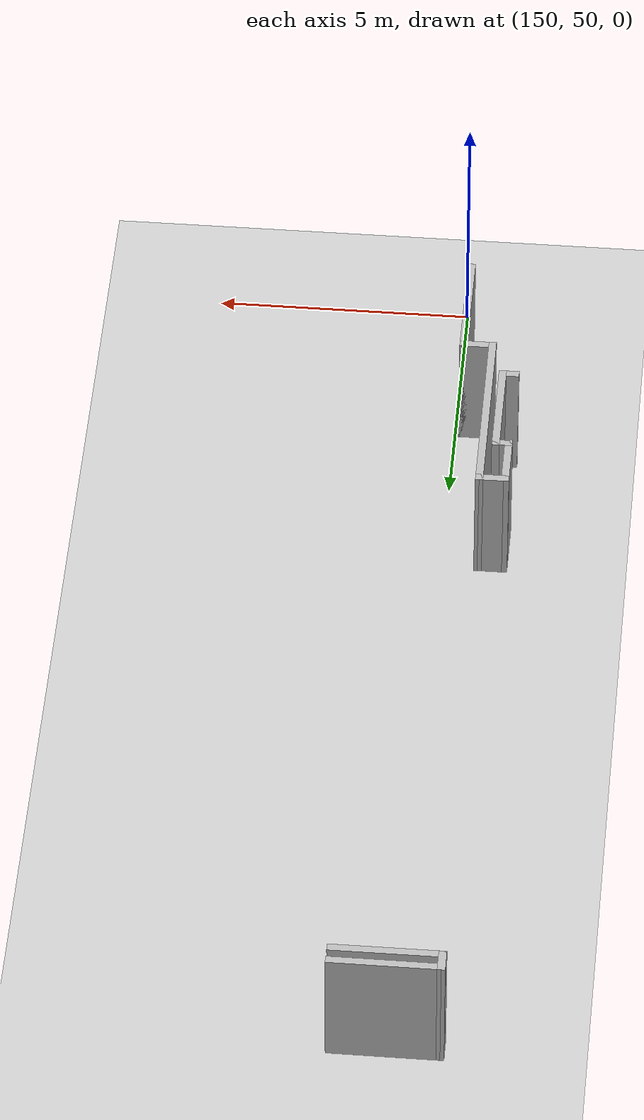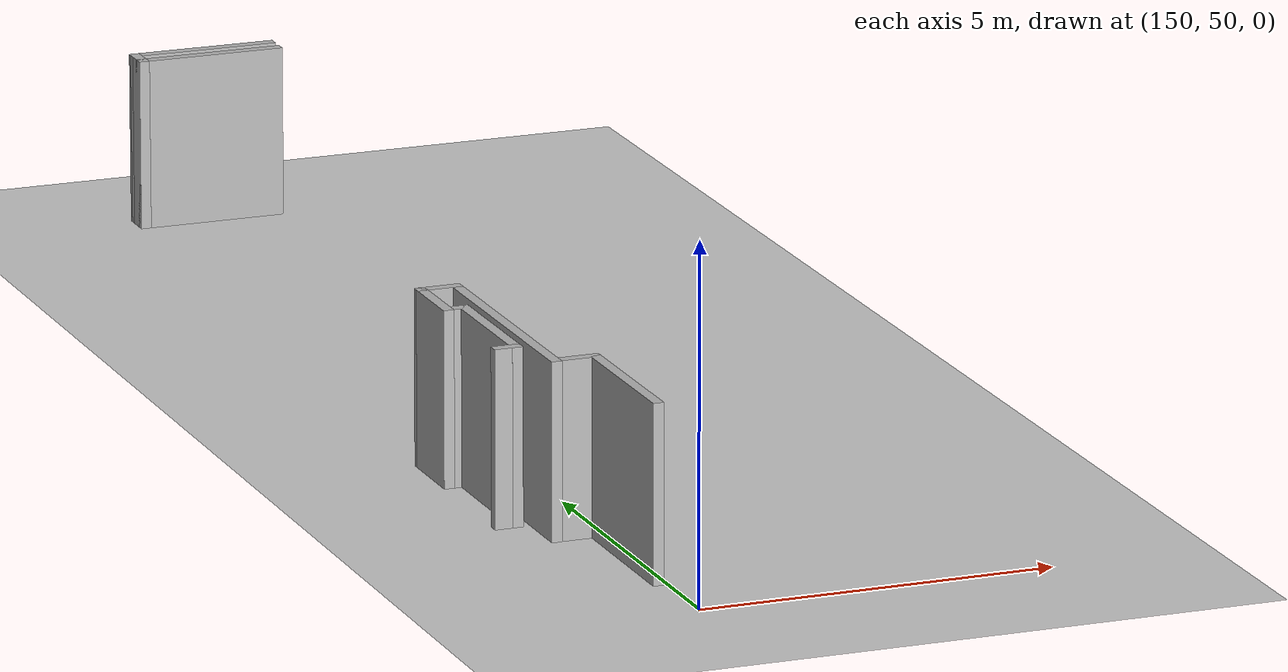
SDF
<sdf version="1.6">
 <world name="default">
  <model name="ground_plane">
   <static>1</static>
   <link name="link">
    <collision name="collision">
     <geometry><plane><normal>0 0 1</normal><size>200 100</size></plane></geometry>
     <surface><friction><ode><mu>100</mu><mu2>50</mu2></ode></friction></surface>
    </collision>
    <visual name="visual">
     <cast_shadows>0</cast_shadows>
     <geometry><plane><normal>0 0 1</normal><size>200 100</size></plane></geometry>
     <material>
      <script><uri>file://media/materials/scripts/gazebo.material</uri><name>Gazebo/Grey</name></script>
     </material>
    </visual>
   </link>
  </model>
  <model name="vgke_production">
   <link name="Wall_313">
    <pose>50.4793 22.2278 0 0 0 -1.5708</pose>
    <visual name="Wall_313_Visual">
     <pose>0 0 1.25 0 -0 0</pose>
     <geometry><box><size>0.458925 0.15 2.5</size></box></geometry>
    </visual>
    <collision name="Wall_313_Collision">
     <pose>0 0 1.25 0 -0 0</pose>
     <geometry><box><size>0.458925 0.15 2.5</size></box></geometry>
    </collision>
    <inertial>
     <inertia><ixx>1</ixx><ixy>0</ixy><ixz>0</ixz><iyy>1</iyy><iyz>0</iyz><izz>1</izz></inertia>
     <mass>1</mass>
    </inertial>
   </link>
   <link name="Wall_314">
    <pose>51.4952 22.0734 0 0 -0 0</pose>
    <visual name="Wall_314_Visual">
     <pose>0 0 1.25 0 -0 0</pose>
     <geometry><box><size>2.18178 0.15 2.5</size></box></geometry>
    </visual>
    <collision name="Wall_314_Collision">
     <pose>0 0 1.25 0 -0 0</pose>
     <geometry><box><size>2.18178 0.15 2.5</size></box></geometry>
    </collision>
    <inertial>
     <inertia><ixx>1</ixx><ixy>0</ixy><ixz>0</ixz><iyy>1</iyy><iyz>0</iyz><izz>1</izz></inertia>
     <mass>1</mass>
    </inertial>
   </link>
   <link name="Wall_316">
    <pose>51.4971 22.3783 0 0 -0 3.1377</pose>
    <visual name="Wall_316_Visual">
     <pose>0 0 1.25 0 -0 0</pose>
     <geometry><box><size>2.18575 0.15 2.5</size></box></geometry>
    </visual>
    <collision name="Wall_316_Collision">
     <pose>0 0 1.25 0 -0 0</pose>
     <geometry><box><size>2.18575 0.15 2.5</size></box></geometry>
    </collision>
    <inertial>
     <inertia><ixx>1</ixx><ixy>0</ixy><ixz>0</ixz><iyy>1</iyy><iyz>0</iyz><izz>1</izz></inertia>
     <mass>1</mass>
    </inertial>
   </link>
   <link name="Wall_342">
    <pose>51.26 4.86571 0 0 -0 1.5708</pose>
    <visual name="Wall_342_Visual">
     <pose>0 0 1.25 0 -0 0</pose>
     <geometry><box><size>2.37886 0.15 2.5</size></box></geometry>
    </visual>
    <collision name="Wall_342_Collision">
     <pose>0 0 1.25 0 -0 0</pose>
     <geometry><box><size>2.37886 0.15 2.5</size></box></geometry>
    </collision>
    <inertial>
     <inertia><ixx>1</ixx><ixy>0</ixy><ixz>0</ixz><iyy>1</iyy><iyz>0</iyz><izz>1</izz></inertia>
     <mass>1</mass>
    </inertial>
   </link>
   <link name="Wall_343">
    <pose>51.0142 5.98014 0 0 -0 3.14159</pose>
    <visual name="Wall_343_Visual">
     <pose>0 0 1.25 0 -0 0</pose>
     <geometry><box><size>0.64156 0.15 2.5</size></box></geometry>
    </visual>
    <collision name="Wall_343_Collision">
     <pose>0 0 1.25 0 -0 0</pose>
     <geometry><box><size>0.64156 0.15 2.5</size></box></geometry>
    </collision>
    <inertial>
     <inertia><ixx>1</ixx><ixy>0</ixy><ixz>0</ixz><iyy>1</iyy><iyz>0</iyz><izz>1</izz></inertia>
     <mass>1</mass>
    </inertial>
   </link>
   <link name="Wall_346">
    <pose>50.6884 7.83654 0 0 0 -1.5708</pose>
    <visual name="Wall_346_Visual">
     <pose>0 0 1.25 0 -0 0</pose>
     <geometry><box><size>3.87453 0.15 2.5</size></box></geometry>
    </visual>
    <collision name="Wall_346_Collision">
     <pose>0 0 1.25 0 -0 0</pose>
     <geometry><box><size>3.87453 0.15 2.5</size></box></geometry>
    </collision>
    <inertial>
     <inertia><ixx>1</ixx><ixy>0</ixy><ixz>0</ixz><iyy>1</iyy><iyz>0</iyz><izz>1</izz></inertia>
     <mass>1</mass>
    </inertial>
   </link>
   <link name="Wall_348">
    <pose>50.4376 9.69843 0 0 0 -3.14011</pose>
    <visual name="Wall_348_Visual">
     <pose>0 0 1.25 0 -0 0</pose>
     <geometry><box><size>0.65158 0.15 2.5</size></box></geometry>
    </visual>
    <collision name="Wall_348_Collision">
     <pose>0 0 1.25 0 -0 0</pose>
     <geometry><box><size>0.65158 0.15 2.5</size></box></geometry>
    </collision>
    <inertial>
     <inertia><ixx>1</ixx><ixy>0</ixy><ixz>0</ixz><iyy>1</iyy><iyz>0</iyz><izz>1</izz></inertia>
     <mass>1</mass>
    </inertial>
   </link>
   <link name="Wall_349">
    <pose>50.1868 9.20278 0 0 0 -1.5708</pose>
    <visual name="Wall_349_Visual">
     <pose>0 0 1.25 0 -0 0</pose>
     <geometry><box><size>1.14065 0.15 2.5</size></box></geometry>
    </visual>
    <collision name="Wall_349_Collision">
     <pose>0 0 1.25 0 -0 0</pose>
     <geometry><box><size>1.14065 0.15 2.5</size></box></geometry>
    </collision>
    <inertial>
     <inertia><ixx>1</ixx><ixy>0</ixy><ixz>0</ixz><iyy>1</iyy><iyz>0</iyz><izz>1</izz></inertia>
     <mass>1</mass>
    </inertial>
   </link>
   <link name="Wall_350">
    <pose>50.3123 8.7075 0 0 -0 0</pose>
    <visual name="Wall_350_Visual">
     <pose>0 0 1.25 0 -0 0</pose>
     <geometry><box><size>0.400943 0.15 2.5</size></box></geometry>
    </visual>
    <collision name="Wall_350_Collision">
     <pose>0 0 1.25 0 -0 0</pose>
     <geometry><box><size>0.400943 0.15 2.5</size></box></geometry>
    </collision>
    <inertial>
     <inertia><ixx>1</ixx><ixy>0</ixy><ixz>0</ixz><iyy>1</iyy><iyz>0</iyz><izz>1</izz></inertia>
     <mass>1</mass>
    </inertial>
   </link>
   <link name="Wall_351">
    <pose>50.4378 7.73674 0 0 0 -1.5708</pose>
    <visual name="Wall_351_Visual">
     <pose>0 0 1.25 0 -0 0</pose>
     <geometry><box><size>2.09155 0.15 2.5</size></box></geometry>
    </visual>
    <collision name="Wall_351_Collision">
     <pose>0 0 1.25 0 -0 0</pose>
     <geometry><box><size>2.09155 0.15 2.5</size></box></geometry>
    </collision>
    <inertial>
     <inertia><ixx>1</ixx><ixy>0</ixy><ixz>0</ixz><iyy>1</iyy><iyz>0</iyz><izz>1</izz></inertia>
     <mass>1</mass>
    </inertial>
   </link>
   <link name="Wall_352">
    <pose>50.3123 6.76599 0 0 -0 3.14159</pose>
    <visual name="Wall_352_Visual">
     <pose>0 0 1.25 0 -0 0</pose>
     <geometry><box><size>0.400943 0.15 2.5</size></box></geometry>
    </visual>
    <collision name="Wall_352_Collision">
     <pose>0 0 1.25 0 -0 0</pose>
     <geometry><box><size>0.400943 0.15 2.5</size></box></geometry>
    </collision>
    <inertial>
     <inertia><ixx>1</ixx><ixy>0</ixy><ixz>0</ixz><iyy>1</iyy><iyz>0</iyz><izz>1</izz></inertia>
     <mass>1</mass>
    </inertial>
   </link>
   <pose>98.6 47.426 0.01 0 0 0</pose>
  </model>
 </world>
</sdf>
